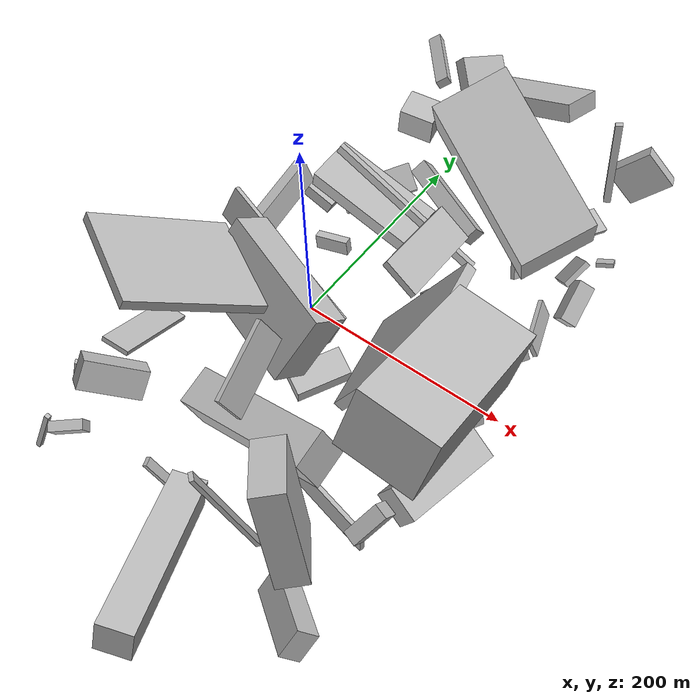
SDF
<sdf version="1.6">
 <world name="default">
  <model name="building_4">
   <static>0</static>
   <pose>72.14554987464192 -160.28427427469046 95.46834126526602 2.862349336451859 0.297338627080415 3.0751863165975117</pose>
   <link name="link">
    <gravity>0</gravity>
    <pose>0 0 18.0 0 0 0</pose>
    <collision name="collision"><geometry><box><size>132 33 36</size></box></geometry></collision>
    <visual name="visual">
     <cast_shadows>0</cast_shadows>
     <geometry><box><size>132 33 36</size></box></geometry>
     <material>
      <script>
       <uri>model://HANNAS_wall/materials/scripts</uri>
       <uri>model://HANNAS_wall/materials/textures</uri>
       <name>vrc/HANNAS_wall</name>
      </script>
     </material>
    </visual>
   </link>
  </model>
  <model name="building_5">
   <static>0</static>
   <pose>27.455113415165414 -215.39559787541074 29.18226461705367 2.0715855866218402 0.04990659974912432 -1.2347461568282398</pose>
   <link name="link">
    <gravity>0</gravity>
    <pose>0 0 2.0 0 0 0</pose>
    <collision name="collision"><geometry><box><size>8 51 4</size></box></geometry></collision>
    <visual name="visual">
     <cast_shadows>0</cast_shadows>
     <geometry><box><size>8 51 4</size></box></geometry>
     <material>
      <script>
       <uri>model://HANNAS_wall/materials/scripts</uri>
       <uri>model://HANNAS_wall/materials/textures</uri>
       <name>vrc/HANNAS_wall</name>
      </script>
     </material>
    </visual>
   </link>
  </model>
  <model name="building_6">
   <static>0</static>
   <pose>12.988297759333312 246.08713630150748 76.64694129703147 0.6199971534228926 0.25793683531996753 1.026406095238679</pose>
   <link name="link">
    <gravity>0</gravity>
    <pose>0 0 7.5 0 0 0</pose>
    <collision name="collision"><geometry><box><size>42 68 15</size></box></geometry></collision>
    <visual name="visual">
     <cast_shadows>0</cast_shadows>
     <geometry><box><size>42 68 15</size></box></geometry>
     <material>
      <script>
       <uri>model://HANNAS_wall/materials/scripts</uri>
       <uri>model://HANNAS_wall/materials/textures</uri>
       <name>vrc/HANNAS_wall</name>
      </script>
     </material>
    </visual>
   </link>
  </model>
  <model name="building_7">
   <static>0</static>
   <pose>-58.65619049075032 92.36088858382433 28.69708500219227 0.3748923127911992 0.20801758116350988 1.691753317846941</pose>
   <link name="link">
    <gravity>0</gravity>
    <pose>0 0 5.5 0 0 0</pose>
    <collision name="collision"><geometry><box><size>26 30 11</size></box></geometry></collision>
    <visual name="visual">
     <cast_shadows>0</cast_shadows>
     <geometry><box><size>26 30 11</size></box></geometry>
     <material>
      <script>
       <uri>model://HANNAS_wall/materials/scripts</uri>
       <uri>model://HANNAS_wall/materials/textures</uri>
       <name>vrc/HANNAS_wall</name>
      </script>
     </material>
    </visual>
   </link>
  </model>
  <model name="building_8">
   <static>0</static>
   <pose>102.62250937787707 99.57890170342623 130.70077588055725 1.2444803115984604 -0.37873907239430943 2.7292689289113694</pose>
   <link name="link">
    <gravity>0</gravity>
    <pose>0 0 34.0 0 0 0</pose>
    <collision name="collision"><geometry><box><size>150 61 68</size></box></geometry></collision>
    <visual name="visual">
     <cast_shadows>0</cast_shadows>
     <geometry><box><size>150 61 68</size></box></geometry>
     <material>
      <script>
       <uri>model://HANNAS_wall/materials/scripts</uri>
       <uri>model://HANNAS_wall/materials/textures</uri>
       <name>vrc/HANNAS_wall</name>
      </script>
     </material>
    </visual>
   </link>
  </model>
  <model name="building_9">
   <static>0</static>
   <pose>202.7517787227274 -86.61082334563133 40.80153771824243 2.6349285698360254 -0.13472629451537432 -1.7200862924907572</pose>
   <link name="link">
    <gravity>0</gravity>
    <pose>0 0 12.5 0 0 0</pose>
    <collision name="collision"><geometry><box><size>92 31 25</size></box></geometry></collision>
    <visual name="visual">
     <cast_shadows>0</cast_shadows>
     <geometry><box><size>92 31 25</size></box></geometry>
     <material>
      <script>
       <uri>model://HANNAS_wall/materials/scripts</uri>
       <uri>model://HANNAS_wall/materials/textures</uri>
       <name>vrc/HANNAS_wall</name>
      </script>
     </material>
    </visual>
   </link>
  </model>
  <model name="building_10">
   <static>0</static>
   <pose>71.4421230212381 -225.52427801922434 93.69462343988613 2.871341220883716 -0.06809727427468652 2.4377093972813553</pose>
   <link name="link">
    <gravity>0</gravity>
    <pose>0 0 75.0 0 0 0</pose>
    <collision name="collision"><geometry><box><size>8 4 150</size></box></geometry></collision>
    <visual name="visual">
     <cast_shadows>0</cast_shadows>
     <geometry><box><size>8 4 150</size></box></geometry>
     <material>
      <script>
       <uri>model://HANNAS_wall/materials/scripts</uri>
       <uri>model://HANNAS_wall/materials/textures</uri>
       <name>vrc/HANNAS_wall</name>
      </script>
     </material>
    </visual>
   </link>
  </model>
  <model name="building_11">
   <static>0</static>
   <pose>6.9473085625313145 -82.75635270580358 71.49528356780012 -0.6119719767505004 0.11467026329399896 -0.32320605467079366</pose>
   <link name="link">
    <gravity>0</gravity>
    <pose>0 0 33.0 0 0 0</pose>
    <collision name="collision"><geometry><box><size>116 34 66</size></box></geometry></collision>
    <visual name="visual">
     <cast_shadows>0</cast_shadows>
     <geometry><box><size>116 34 66</size></box></geometry>
     <material>
      <script>
       <uri>model://HANNAS_wall/materials/scripts</uri>
       <uri>model://HANNAS_wall/materials/textures</uri>
       <name>vrc/HANNAS_wall</name>
      </script>
     </material>
    </visual>
   </link>
  </model>
  <model name="building_12">
   <static>0</static>
   <pose>186.60716540189605 -93.6399883589325 120.61188233840173 0.177817727709442 0.2974643429477648 1.6532316689934208</pose>
   <link name="link">
    <gravity>0</gravity>
    <pose>0 0 29.5 0 0 0</pose>
    <collision name="collision"><geometry><box><size>150 69 59</size></box></geometry></collision>
    <visual name="visual">
     <cast_shadows>0</cast_shadows>
     <geometry><box><size>150 69 59</size></box></geometry>
     <material>
      <script>
       <uri>model://HANNAS_wall/materials/scripts</uri>
       <uri>model://HANNAS_wall/materials/textures</uri>
       <name>vrc/HANNAS_wall</name>
      </script>
     </material>
    </visual>
   </link>
  </model>
  <model name="building_13">
   <static>0</static>
   <pose>-5.061896943307897 162.18733115802516 27.386425787203688 -1.842487392568101 -0.6410245330838868 2.620092135768391</pose>
   <link name="link">
    <gravity>0</gravity>
    <pose>0 0 34.5 0 0 0</pose>
    <collision name="collision"><geometry><box><size>26 31 69</size></box></geometry></collision>
    <visual name="visual">
     <cast_shadows>0</cast_shadows>
     <geometry><box><size>26 31 69</size></box></geometry>
     <material>
      <script>
       <uri>model://HANNAS_wall/materials/scripts</uri>
       <uri>model://HANNAS_wall/materials/textures</uri>
       <name>vrc/HANNAS_wall</name>
      </script>
     </material>
    </visual>
   </link>
  </model>
  <model name="building_16">
   <static>0</static>
   <pose>3.227866976682064 87.54969635269983 65.16525952202149 -0.12580168054938037 -0.250617370146062 3.1400900635186724</pose>
   <link name="link">
    <gravity>0</gravity>
    <pose>0 0 9.5 0 0 0</pose>
    <collision name="collision"><geometry><box><size>102 43 19</size></box></geometry></collision>
    <visual name="visual">
     <cast_shadows>0</cast_shadows>
     <geometry><box><size>102 43 19</size></box></geometry>
     <material>
      <script>
       <uri>model://HANNAS_wall/materials/scripts</uri>
       <uri>model://HANNAS_wall/materials/textures</uri>
       <name>vrc/HANNAS_wall</name>
      </script>
     </material>
    </visual>
   </link>
  </model>
  <model name="building_17">
   <static>0</static>
   <pose>182.96779162348668 -166.00540195531036 24.36360447554237 -2.109078049301248 -1.37159339434228 1.838864119348355</pose>
   <link name="link">
    <gravity>0</gravity>
    <pose>0 0 75.0 0 0 0</pose>
    <collision name="collision"><geometry><box><size>19 4 150</size></box></geometry></collision>
    <visual name="visual">
     <cast_shadows>0</cast_shadows>
     <geometry><box><size>19 4 150</size></box></geometry>
     <material>
      <script>
       <uri>model://HANNAS_wall/materials/scripts</uri>
       <uri>model://HANNAS_wall/materials/textures</uri>
       <name>vrc/HANNAS_wall</name>
      </script>
     </material>
    </visual>
   </link>
  </model>
  <model name="building_18">
   <static>0</static>
   <pose>174.2005169151156 -10.354869102296995 63.520793196905935 0.22403962381270115 -0.43380454161002846 -0.7782601644176248</pose>
   <link name="link">
    <gravity>0</gravity>
    <pose>0 0 6.5 0 0 0</pose>
    <collision name="collision"><geometry><box><size>19 97 13</size></box></geometry></collision>
    <visual name="visual">
     <cast_shadows>0</cast_shadows>
     <geometry><box><size>19 97 13</size></box></geometry>
     <material>
      <script>
       <uri>model://HANNAS_wall/materials/scripts</uri>
       <uri>model://HANNAS_wall/materials/textures</uri>
       <name>vrc/HANNAS_wall</name>
      </script>
     </material>
    </visual>
   </link>
  </model>
  <model name="building_23">
   <static>0</static>
   <pose>87.31216277548899 56.31560255160031 28.561462060471058 -1.7134814832601835 -0.8382334653004302 -0.2385838709501269</pose>
   <link name="link">
    <gravity>0</gravity>
    <pose>0 0 5.5 0 0 0</pose>
    <collision name="collision"><geometry><box><size>28 4 11</size></box></geometry></collision>
    <visual name="visual">
     <cast_shadows>0</cast_shadows>
     <geometry><box><size>28 4 11</size></box></geometry>
     <material>
      <script>
       <uri>model://HANNAS_wall/materials/scripts</uri>
       <uri>model://HANNAS_wall/materials/textures</uri>
       <name>vrc/HANNAS_wall</name>
      </script>
     </material>
    </visual>
   </link>
  </model>
  <model name="building_24">
   <static>0</static>
   <pose>110.78501412344387 208.43921185693898 35.922712372453674 -2.756564015584108 -0.32185044222456 1.774122947067254</pose>
   <link name="link">
    <gravity>0</gravity>
    <pose>0 0 14.0 0 0 0</pose>
    <collision name="collision"><geometry><box><size>35 41 28</size></box></geometry></collision>
    <visual name="visual">
     <cast_shadows>0</cast_shadows>
     <geometry><box><size>35 41 28</size></box></geometry>
     <material>
      <script>
       <uri>model://HANNAS_wall/materials/scripts</uri>
       <uri>model://HANNAS_wall/materials/textures</uri>
       <name>vrc/HANNAS_wall</name>
      </script>
     </material>
    </visual>
   </link>
  </model>
  <model name="building_25">
   <static>0</static>
   <pose>181.0774058191318 191.48400869599908 6.701103839712018 1.3570119009771613 0.4797246141236802 1.8762231747378209</pose>
   <link name="link">
    <gravity>0</gravity>
    <pose>0 0 8.0 0 0 0</pose>
    <collision name="collision"><geometry><box><size>11 4 16</size></box></geometry></collision>
    <visual name="visual">
     <cast_shadows>0</cast_shadows>
     <geometry><box><size>11 4 16</size></box></geometry>
     <material>
      <script>
       <uri>model://HANNAS_wall/materials/scripts</uri>
       <uri>model://HANNAS_wall/materials/textures</uri>
       <name>vrc/HANNAS_wall</name>
      </script>
     </material>
    </visual>
   </link>
  </model>
  <model name="building_28">
   <static>0</static>
   <pose>199.74441744504782 130.32658964373215 18.852349144662337 0.6794698139315676 -0.8226962912702351 -0.44154241616454853</pose>
   <link name="link">
    <gravity>0</gravity>
    <pose>0 0 8.0 0 0 0</pose>
    <collision name="collision"><geometry><box><size>15 38 16</size></box></geometry></collision>
    <visual name="visual">
     <cast_shadows>0</cast_shadows>
     <geometry><box><size>15 38 16</size></box></geometry>
     <material>
      <script>
       <uri>model://HANNAS_wall/materials/scripts</uri>
       <uri>model://HANNAS_wall/materials/textures</uri>
       <name>vrc/HANNAS_wall</name>
      </script>
     </material>
    </visual>
   </link>
  </model>
  <model name="building_32">
   <static>0</static>
   <pose>-62.99145115971986 -103.39776851452845 57.855989090943424 1.0920895681987541 0.09969729399840428 0.07528122351223862</pose>
   <link name="link">
    <gravity>0</gravity>
    <pose>0 0 40.0 0 0 0</pose>
    <collision name="collision"><geometry><box><size>25 4 80</size></box></geometry></collision>
    <visual name="visual">
     <cast_shadows>0</cast_shadows>
     <geometry><box><size>25 4 80</size></box></geometry>
     <material>
      <script>
       <uri>model://HANNAS_wall/materials/scripts</uri>
       <uri>model://HANNAS_wall/materials/textures</uri>
       <name>vrc/HANNAS_wall</name>
      </script>
     </material>
    </visual>
   </link>
  </model>
  <model name="building_38">
   <static>0</static>
   <pose>104.0301544187167 -58.79482374244911 71.06181902099497 0.19506444616257484 -0.594484643912337 -3.0150719055411943</pose>
   <link name="link">
    <gravity>0</gravity>
    <pose>0 0 56.0 0 0 0</pose>
    <collision name="collision"><geometry><box><size>9 100 112</size></box></geometry></collision>
    <visual name="visual">
     <cast_shadows>0</cast_shadows>
     <geometry><box><size>9 100 112</size></box></geometry>
     <material>
      <script>
       <uri>model://HANNAS_wall/materials/scripts</uri>
       <uri>model://HANNAS_wall/materials/textures</uri>
       <name>vrc/HANNAS_wall</name>
      </script>
     </material>
    </visual>
   </link>
  </model>
  <model name="building_41">
   <static>0</static>
   <pose>51.22601816660328 -215.1005085032021 40.19951475292228 -1.310016632847389 -0.13270324721785903 -2.7793175154548946</pose>
   <link name="link">
    <gravity>0</gravity>
    <pose>0 0 75.0 0 0 0</pose>
    <collision name="collision"><geometry><box><size>29 29 150</size></box></geometry></collision>
    <visual name="visual">
     <cast_shadows>0</cast_shadows>
     <geometry><box><size>29 29 150</size></box></geometry>
     <material>
      <script>
       <uri>model://HANNAS_wall/materials/scripts</uri>
       <uri>model://HANNAS_wall/materials/textures</uri>
       <name>vrc/HANNAS_wall</name>
      </script>
     </material>
    </visual>
   </link>
  </model>
  <model name="building_42">
   <static>0</static>
   <pose>89.35495362100944 122.70212728761415 44.22909692571542 -1.404519433466037 -0.6216357987337162 1.0976996027735015</pose>
   <link name="link">
    <gravity>0</gravity>
    <pose>0 0 43.0 0 0 0</pose>
    <collision name="collision"><geometry><box><size>16 18 86</size></box></geometry></collision>
    <visual name="visual">
     <cast_shadows>0</cast_shadows>
     <geometry><box><size>16 18 86</size></box></geometry>
     <material>
      <script>
       <uri>model://HANNAS_wall/materials/scripts</uri>
       <uri>model://HANNAS_wall/materials/textures</uri>
       <name>vrc/HANNAS_wall</name>
      </script>
     </material>
    </visual>
   </link>
  </model>
  <model name="building_46">
   <static>0</static>
   <pose>185.65458545970543 -120.65750094421864 13.933193260316138 -0.7067060168110197 0.062339847843441 -2.197913412834108</pose>
   <link name="link">
    <gravity>0</gravity>
    <pose>0 0 6.5 0 0 0</pose>
    <collision name="collision"><geometry><box><size>14 11 13</size></box></geometry></collision>
    <visual name="visual">
     <cast_shadows>0</cast_shadows>
     <geometry><box><size>14 11 13</size></box></geometry>
     <material>
      <script>
       <uri>model://HANNAS_wall/materials/scripts</uri>
       <uri>model://HANNAS_wall/materials/textures</uri>
       <name>vrc/HANNAS_wall</name>
      </script>
     </material>
    </visual>
   </link>
  </model>
  <model name="building_49">
   <static>0</static>
   <pose>-11.81209381886542 -21.014548695329964 73.30875428408747 1.9009994369331058 -0.24830341465834005 2.899207331026918</pose>
   <link name="link">
    <gravity>0</gravity>
    <pose>0 0 2.0 0 0 0</pose>
    <collision name="collision"><geometry><box><size>150 36 4</size></box></geometry></collision>
    <visual name="visual">
     <cast_shadows>0</cast_shadows>
     <geometry><box><size>150 36 4</size></box></geometry>
     <material>
      <script>
       <uri>model://HANNAS_wall/materials/scripts</uri>
       <uri>model://HANNAS_wall/materials/textures</uri>
       <name>vrc/HANNAS_wall</name>
      </script>
     </material>
    </visual>
   </link>
  </model>
  <model name="building_54">
   <static>0</static>
   <pose>45.93146461539844 -83.16016865881167 17.706523208313165 -1.3894618202024682 -1.3727146002992283 -0.6647835340082457</pose>
   <link name="link">
    <gravity>0</gravity>
    <pose>0 0 24.5 0 0 0</pose>
    <collision name="collision"><geometry><box><size>15 26 49</size></box></geometry></collision>
    <visual name="visual">
     <cast_shadows>0</cast_shadows>
     <geometry><box><size>15 26 49</size></box></geometry>
     <material>
      <script>
       <uri>model://HANNAS_wall/materials/scripts</uri>
       <uri>model://HANNAS_wall/materials/textures</uri>
       <name>vrc/HANNAS_wall</name>
      </script>
     </material>
    </visual>
   </link>
  </model>
  <model name="building_56">
   <static>0</static>
   <pose>81.3703714695214 -187.54041643328367 145.51406051022508 1.2729976123963942 0.34543398180471413 -3.0525811041738216</pose>
   <link name="link">
    <gravity>0</gravity>
    <pose>0 0 33.5 0 0 0</pose>
    <collision name="collision"><geometry><box><size>4 31 67</size></box></geometry></collision>
    <visual name="visual">
     <cast_shadows>0</cast_shadows>
     <geometry><box><size>4 31 67</size></box></geometry>
     <material>
      <script>
       <uri>model://HANNAS_wall/materials/scripts</uri>
       <uri>model://HANNAS_wall/materials/textures</uri>
       <name>vrc/HANNAS_wall</name>
      </script>
     </material>
    </visual>
   </link>
  </model>
  <model name="building_59">
   <static>0</static>
   <pose>108.34973054313161 -17.776719207900733 141.84827687018532 -2.018929834513136 -0.9471633158174252 0.47647521999681325</pose>
   <link name="link">
    <gravity>0</gravity>
    <pose>0 0 46.0 0 0 0</pose>
    <collision name="collision"><geometry><box><size>6 34 92</size></box></geometry></collision>
    <visual name="visual">
     <cast_shadows>0</cast_shadows>
     <geometry><box><size>6 34 92</size></box></geometry>
     <material>
      <script>
       <uri>model://HANNAS_wall/materials/scripts</uri>
       <uri>model://HANNAS_wall/materials/textures</uri>
       <name>vrc/HANNAS_wall</name>
      </script>
     </material>
    </visual>
   </link>
  </model>
  <model name="building_60">
   <static>0</static>
   <pose>165.03557435786172 217.1312511909047 30.998961051833057 -0.7894598393373916 1.2203758024453972 -2.7791201473851928</pose>
   <link name="link">
    <gravity>0</gravity>
    <pose>0 0 24.0 0 0 0</pose>
    <collision name="collision"><geometry><box><size>4 24 48</size></box></geometry></collision>
    <visual name="visual">
     <cast_shadows>0</cast_shadows>
     <geometry><box><size>4 24 48</size></box></geometry>
     <material>
      <script>
       <uri>model://HANNAS_wall/materials/scripts</uri>
       <uri>model://HANNAS_wall/materials/textures</uri>
       <name>vrc/HANNAS_wall</name>
      </script>
     </material>
    </visual>
   </link>
  </model>
  <model name="building_61">
   <static>0</static>
   <pose>194.35589414106292 -255.14438751471798 68.70715633391022 -0.8549571640815243 0.3444442959675117 2.5223231918122435</pose>
   <link name="link">
    <gravity>0</gravity>
    <pose>0 0 9.0 0 0 0</pose>
    <collision name="collision"><geometry><box><size>65 25 18</size></box></geometry></collision>
    <visual name="visual">
     <cast_shadows>0</cast_shadows>
     <geometry><box><size>65 25 18</size></box></geometry>
     <material>
      <script>
       <uri>model://HANNAS_wall/materials/scripts</uri>
       <uri>model://HANNAS_wall/materials/textures</uri>
       <name>vrc/HANNAS_wall</name>
      </script>
     </material>
    </visual>
   </link>
  </model>
  <model name="building_62">
   <static>0</static>
   <pose>178.90717624681315 177.6552154083381 148.99580416436882 1.5433126155544536 0.026989143729246868 2.107680436843292</pose>
   <link name="link">
    <gravity>0</gravity>
    <pose>0 0 3.0 0 0 0</pose>
    <collision name="collision"><geometry><box><size>4 88 6</size></box></geometry></collision>
    <visual name="visual">
     <cast_shadows>0</cast_shadows>
     <geometry><box><size>4 88 6</size></box></geometry>
     <material>
      <script>
       <uri>model://HANNAS_wall/materials/scripts</uri>
       <uri>model://HANNAS_wall/materials/textures</uri>
       <name>vrc/HANNAS_wall</name>
      </script>
     </material>
    </visual>
   </link>
  </model>
  <model name="building_63">
   <static>0</static>
   <pose>147.4892777621553 -231.40618851036027 129.65236536662755 1.1451804566178239 -1.2669064001753623 2.707655918758898</pose>
   <link name="link">
    <gravity>0</gravity>
    <pose>0 0 13.0 0 0 0</pose>
    <collision name="collision"><geometry><box><size>91 56 26</size></box></geometry></collision>
    <visual name="visual">
     <cast_shadows>0</cast_shadows>
     <geometry><box><size>91 56 26</size></box></geometry>
     <material>
      <script>
       <uri>model://HANNAS_wall/materials/scripts</uri>
       <uri>model://HANNAS_wall/materials/textures</uri>
       <name>vrc/HANNAS_wall</name>
      </script>
     </material>
    </visual>
   </link>
  </model>
  <model name="building_66">
   <static>0</static>
   <pose>-63.5674639669976 -259.23623859437646 50.21611146319458 -0.21321501871885493 0.28252095962831303 0.034393575301303624</pose>
   <link name="link">
    <gravity>0</gravity>
    <pose>0 0 21.5 0 0 0</pose>
    <collision name="collision"><geometry><box><size>4 4 43</size></box></geometry></collision>
    <visual name="visual">
     <cast_shadows>0</cast_shadows>
     <geometry><box><size>4 4 43</size></box></geometry>
     <material>
      <script>
       <uri>model://HANNAS_wall/materials/scripts</uri>
       <uri>model://HANNAS_wall/materials/textures</uri>
       <name>vrc/HANNAS_wall</name>
      </script>
     </material>
    </visual>
   </link>
  </model>
  <model name="building_69">
   <static>0</static>
   <pose>115.73514064043871 77.41797271628005 67.25836788437189 -0.4304884318102 1.0387506126395705 2.7024513872365366</pose>
   <link name="link">
    <gravity>0</gravity>
    <pose>0 0 75.0 0 0 0</pose>
    <collision name="collision"><geometry><box><size>16 4 150</size></box></geometry></collision>
    <visual name="visual">
     <cast_shadows>0</cast_shadows>
     <geometry><box><size>16 4 150</size></box></geometry>
     <material>
      <script>
       <uri>model://HANNAS_wall/materials/scripts</uri>
       <uri>model://HANNAS_wall/materials/textures</uri>
       <name>vrc/HANNAS_wall</name>
      </script>
     </material>
    </visual>
   </link>
  </model>
  <model name="building_73">
   <static>0</static>
   <pose>141.2326560477744 -8.17869383689509 18.877860372095085 -1.2179288926541563 -0.07241041557675638 -2.0424205167366436</pose>
   <link name="link">
    <gravity>0</gravity>
    <pose>0 0 33.5 0 0 0</pose>
    <collision name="collision"><geometry><box><size>15 9 67</size></box></geometry></collision>
    <visual name="visual">
     <cast_shadows>0</cast_shadows>
     <geometry><box><size>15 9 67</size></box></geometry>
     <material>
      <script>
       <uri>model://HANNAS_wall/materials/scripts</uri>
       <uri>model://HANNAS_wall/materials/textures</uri>
       <name>vrc/HANNAS_wall</name>
      </script>
     </material>
    </visual>
   </link>
  </model>
  <model name="building_74">
   <static>0</static>
   <pose>191.1637805190647 -161.05375043059664 61.078070994236775 0.34071202320000193 -0.6963101602647586 1.0817049245956645</pose>
   <link name="link">
    <gravity>0</gravity>
    <pose>0 0 9.0 0 0 0</pose>
    <collision name="collision"><geometry><box><size>34 13 18</size></box></geometry></collision>
    <visual name="visual">
     <cast_shadows>0</cast_shadows>
     <geometry><box><size>34 13 18</size></box></geometry>
     <material>
      <script>
       <uri>model://HANNAS_wall/materials/scripts</uri>
       <uri>model://HANNAS_wall/materials/textures</uri>
       <name>vrc/HANNAS_wall</name>
      </script>
     </material>
    </visual>
   </link>
  </model>
  <model name="building_75">
   <static>0</static>
   <pose>122.58624848762763 231.2243750904429 138.55425290288025 2.5009799261740153 1.1205494484142393 -0.7058367270314568</pose>
   <link name="link">
    <gravity>0</gravity>
    <pose>0 0 50.0 0 0 0</pose>
    <collision name="collision"><geometry><box><size>16 40 100</size></box></geometry></collision>
    <visual name="visual">
     <cast_shadows>0</cast_shadows>
     <geometry><box><size>16 40 100</size></box></geometry>
     <material>
      <script>
       <uri>model://HANNAS_wall/materials/scripts</uri>
       <uri>model://HANNAS_wall/materials/textures</uri>
       <name>vrc/HANNAS_wall</name>
      </script>
     </material>
    </visual>
   </link>
  </model>
  <model name="building_77">
   <static>0</static>
   <pose>-33.10893885206311 246.0312131364272 91.73412403198813 -0.1794422137977507 -0.5065578997167356 0.789419476050858</pose>
   <link name="link">
    <gravity>0</gravity>
    <pose>0 0 4.0 0 0 0</pose>
    <collision name="collision"><geometry><box><size>12 72 8</size></box></geometry></collision>
    <visual name="visual">
     <cast_shadows>0</cast_shadows>
     <geometry><box><size>12 72 8</size></box></geometry>
     <material>
      <script>
       <uri>model://HANNAS_wall/materials/scripts</uri>
       <uri>model://HANNAS_wall/materials/textures</uri>
       <name>vrc/HANNAS_wall</name>
      </script>
     </material>
    </visual>
   </link>
  </model>
  <model name="building_79">
   <static>0</static>
   <pose>-84.82799278380897 -195.01688453587326 49.68015064928687 -0.12803618328134206 0.21158204284647283 0.6159517501424868</pose>
   <link name="link">
    <gravity>0</gravity>
    <pose>0 0 9.0 0 0 0</pose>
    <collision name="collision"><geometry><box><size>7 5 18</size></box></geometry></collision>
    <visual name="visual">
     <cast_shadows>0</cast_shadows>
     <geometry><box><size>7 5 18</size></box></geometry>
     <material>
      <script>
       <uri>model://HANNAS_wall/materials/scripts</uri>
       <uri>model://HANNAS_wall/materials/textures</uri>
       <name>vrc/HANNAS_wall</name>
      </script>
     </material>
    </visual>
   </link>
  </model>
  <model name="building_80">
   <static>0</static>
   <pose>158.0002696719412 266.2976852525163 31.21169016481631 -0.21300825179416458 0.8305275010957727 0.20648377910445465</pose>
   <link name="link">
    <gravity>0</gravity>
    <pose>0 0 22.5 0 0 0</pose>
    <collision name="collision"><geometry><box><size>40 12 45</size></box></geometry></collision>
    <visual name="visual">
     <cast_shadows>0</cast_shadows>
     <geometry><box><size>40 12 45</size></box></geometry>
     <material>
      <script>
       <uri>model://HANNAS_wall/materials/scripts</uri>
       <uri>model://HANNAS_wall/materials/textures</uri>
       <name>vrc/HANNAS_wall</name>
      </script>
     </material>
    </visual>
   </link>
  </model>
  <model name="building_81">
   <static>0</static>
   <pose>-42.08456669629973 -184.54238080375052 96.18005194926715 2.595803708398226 -0.48979802090950625 -0.541890758592972</pose>
   <link name="link">
    <gravity>0</gravity>
    <pose>0 0 12.5 0 0 0</pose>
    <collision name="collision"><geometry><box><size>19 53 25</size></box></geometry></collision>
    <visual name="visual">
     <cast_shadows>0</cast_shadows>
     <geometry><box><size>19 53 25</size></box></geometry>
     <material>
      <script>
       <uri>model://HANNAS_wall/materials/scripts</uri>
       <uri>model://HANNAS_wall/materials/textures</uri>
       <name>vrc/HANNAS_wall</name>
      </script>
     </material>
    </visual>
   </link>
  </model>
  <model name="building_83">
   <static>0</static>
   <pose>40.235866182459276 -234.13189996932988 14.394309837767715 0.26526522171312084 -0.2250174701322613 -2.0831339709623817</pose>
   <link name="link">
    <gravity>0</gravity>
    <pose>0 0 2.0 0 0 0</pose>
    <collision name="collision"><geometry><box><size>4 24 4</size></box></geometry></collision>
    <visual name="visual">
     <cast_shadows>0</cast_shadows>
     <geometry><box><size>4 24 4</size></box></geometry>
     <material>
      <script>
       <uri>model://HANNAS_wall/materials/scripts</uri>
       <uri>model://HANNAS_wall/materials/textures</uri>
       <name>vrc/HANNAS_wall</name>
      </script>
     </material>
    </visual>
   </link>
  </model>
  <model name="building_85">
   <static>0</static>
   <pose>-26.773704097518852 232.69102226511066 28.35126138554729 1.4739684564066362 0.04866009790288784 -1.3486323453502338</pose>
   <link name="link">
    <gravity>0</gravity>
    <pose>0 0 17.0 0 0 0</pose>
    <collision name="collision"><geometry><box><size>29 29 34</size></box></geometry></collision>
    <visual name="visual">
     <cast_shadows>0</cast_shadows>
     <geometry><box><size>29 29 34</size></box></geometry>
     <material>
      <script>
       <uri>model://HANNAS_wall/materials/scripts</uri>
       <uri>model://HANNAS_wall/materials/textures</uri>
       <name>vrc/HANNAS_wall</name>
      </script>
     </material>
    </visual>
   </link>
  </model>
  <model name="building_86">
   <static>0</static>
   <pose>-67.81095976642317 80.3050962786929 67.22812661843552 -1.601725699697382 -1.1990828097572375 -2.9833194765743842</pose>
   <link name="link">
    <gravity>0</gravity>
    <pose>0 0 75.0 0 0 0</pose>
    <collision name="collision"><geometry><box><size>22 12 150</size></box></geometry></collision>
    <visual name="visual">
     <cast_shadows>0</cast_shadows>
     <geometry><box><size>22 12 150</size></box></geometry>
     <material>
      <script>
       <uri>model://HANNAS_wall/materials/scripts</uri>
       <uri>model://HANNAS_wall/materials/textures</uri>
       <name>vrc/HANNAS_wall</name>
      </script>
     </material>
    </visual>
   </link>
  </model>
  <model name="building_87">
   <static>0</static>
   <pose>187.60446497488414 84.38036193056956 18.312137679688597 0.11524303325721336 0.43644698287011013 -2.748825060238004</pose>
   <link name="link">
    <gravity>0</gravity>
    <pose>0 0 9.5 0 0 0</pose>
    <collision name="collision"><geometry><box><size>4 50 19</size></box></geometry></collision>
    <visual name="visual">
     <cast_shadows>0</cast_shadows>
     <geometry><box><size>4 50 19</size></box></geometry>
     <material>
      <script>
       <uri>model://HANNAS_wall/materials/scripts</uri>
       <uri>model://HANNAS_wall/materials/textures</uri>
       <name>vrc/HANNAS_wall</name>
      </script>
     </material>
    </visual>
   </link>
  </model>
  <model name="building_88">
   <static>0</static>
   <pose>141.1764593517926 117.43893983201882 30.796414727496977 0.4641158353111736 -0.49916178280636625 -1.7633942978312172</pose>
   <link name="link">
    <gravity>0</gravity>
    <pose>0 0 20.0 0 0 0</pose>
    <collision name="collision"><geometry><box><size>18 4 40</size></box></geometry></collision>
    <visual name="visual">
     <cast_shadows>0</cast_shadows>
     <geometry><box><size>18 4 40</size></box></geometry>
     <material>
      <script>
       <uri>model://HANNAS_wall/materials/scripts</uri>
       <uri>model://HANNAS_wall/materials/textures</uri>
       <name>vrc/HANNAS_wall</name>
      </script>
     </material>
    </visual>
   </link>
  </model>
  <model name="building_92">
   <static>0</static>
   <pose>-1.9895355869475506 -250.18748722181198 126.48463963677263 2.0800341168804004 -1.116403438009302 -1.4542639596024571</pose>
   <link name="link">
    <gravity>0</gravity>
    <pose>0 0 13.5 0 0 0</pose>
    <collision name="collision"><geometry><box><size>13 8 27</size></box></geometry></collision>
    <visual name="visual">
     <cast_shadows>0</cast_shadows>
     <geometry><box><size>13 8 27</size></box></geometry>
     <material>
      <script>
       <uri>model://HANNAS_wall/materials/scripts</uri>
       <uri>model://HANNAS_wall/materials/textures</uri>
       <name>vrc/HANNAS_wall</name>
      </script>
     </material>
    </visual>
   </link>
  </model>
  <model name="building_93">
   <static>0</static>
   <pose>-4.118991300247643 -70.63971263168462 127.21681440229337 -1.0574677486157247 0.05616422652058968 2.626753475510313</pose>
   <link name="link">
    <gravity>0</gravity>
    <pose>0 0 60.0 0 0 0</pose>
    <collision name="collision"><geometry><box><size>97 8 120</size></box></geometry></collision>
    <visual name="visual">
     <cast_shadows>0</cast_shadows>
     <geometry><box><size>97 8 120</size></box></geometry>
     <material>
      <script>
       <uri>model://HANNAS_wall/materials/scripts</uri>
       <uri>model://HANNAS_wall/materials/textures</uri>
       <name>vrc/HANNAS_wall</name>
      </script>
     </material>
    </visual>
   </link>
  </model>
  <model name="building_94">
   <static>0</static>
   <pose>173.48855143734735 138.0320768550546 27.101454553801727 0.9717071187385861 -0.6504738557223946 -3.032249589281481</pose>
   <link name="link">
    <gravity>0</gravity>
    <pose>0 0 13.5 0 0 0</pose>
    <collision name="collision"><geometry><box><size>5 29 27</size></box></geometry></collision>
    <visual name="visual">
     <cast_shadows>0</cast_shadows>
     <geometry><box><size>5 29 27</size></box></geometry>
     <material>
      <script>
       <uri>model://HANNAS_wall/materials/scripts</uri>
       <uri>model://HANNAS_wall/materials/textures</uri>
       <name>vrc/HANNAS_wall</name>
      </script>
     </material>
    </visual>
   </link>
  </model>
  <model name="building_97">
   <static>0</static>
   <pose>-32.35043157593103 52.86015392839783 22.519484653319164 0.6934684012917469 -1.38765225997772 2.6469286211102347</pose>
   <link name="link">
    <gravity>0</gravity>
    <pose>0 0 15.5 0 0 0</pose>
    <collision name="collision"><geometry><box><size>14 8 31</size></box></geometry></collision>
    <visual name="visual">
     <cast_shadows>0</cast_shadows>
     <geometry><box><size>14 8 31</size></box></geometry>
     <material>
      <script>
       <uri>model://HANNAS_wall/materials/scripts</uri>
       <uri>model://HANNAS_wall/materials/textures</uri>
       <name>vrc/HANNAS_wall</name>
      </script>
     </material>
    </visual>
   </link>
  </model>
 </world>
</sdf>
